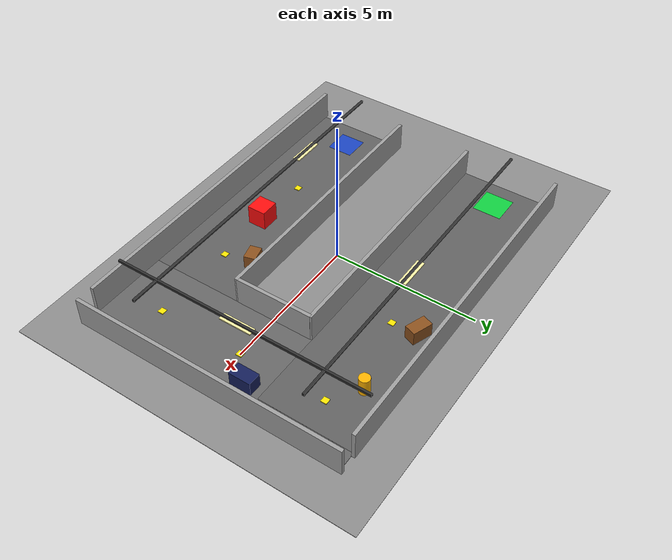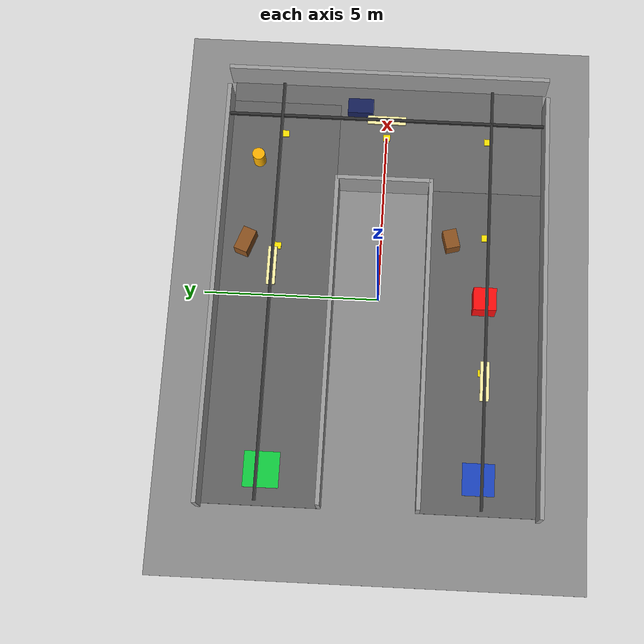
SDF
<?xml version="1.0"?>
<sdf version="1.8">
  <world name="shipyard_corridor_u">

    <!-- Core Gazebo systems -->
    <physics name="1ms" type="ignored">
      <max_step_size>0.001</max_step_size>
      <real_time_factor>1.0</real_time_factor>
    </physics>

    <plugin filename="ignition-gazebo-physics-system" name="ignition::gazebo::systems::Physics"/>
    <plugin filename="ignition-gazebo-user-commands-system" name="ignition::gazebo::systems::UserCommands"/>
    <plugin filename="ignition-gazebo-scene-broadcaster-system" name="ignition::gazebo::systems::SceneBroadcaster"/>

    <!-- Needed for GPU LiDAR / LaserScan sensors -->
    <plugin filename="libignition-gazebo-sensors-system.so" name="ignition::gazebo::systems::Sensors">
      <render_engine>ogre2</render_engine>
    </plugin>

    <!-- Needed for IMU sensors -->
    <plugin filename="libignition-gazebo-imu-system.so" name="ignition::gazebo::systems::Imu"/>

    <light type="directional" name="sun">
      <cast_shadows>true</cast_shadows>
      <pose>0 0 12 0 0 0</pose>
      <diffuse>0.85 0.85 0.85 1</diffuse>
      <specular>0.25 0.25 0.25 1</specular>
      <direction>-0.4 0.2 -0.9</direction>
    </light>

    <!-- Large indoor facility floor under the U-shaped corridor -->
    <model name="facility_floor">
      <static>true</static>
      <pose>0 0 -0.01 0 0 0</pose>
      <link name="link">
        <collision name="collision">
          <geometry><box><size>16.0 12.0 0.02</size></box></geometry>
        </collision>
        <visual name="visual">
          <geometry><box><size>16.0 12.0 0.02</size></box></geometry>
          <material>
            <ambient>0.55 0.55 0.55 1</ambient>
            <diffuse>0.55 0.55 0.55 1</diffuse>
          </material>
        </visual>
      </link>
    </model>

    <!-- U-shaped corridor floor strips: bottom leg, turn/vertical leg, top leg -->
    <model name="bottom_corridor_floor">
      <static>true</static>
      <pose>0 -3.0 0.005 0 0 0</pose>
      <link name="link">
        <collision name="collision"><geometry><box><size>12.0 3.2 0.03</size></box></geometry></collision>
        <visual name="visual"><geometry><box><size>12.0 3.2 0.03</size></box></geometry>
          <material><ambient>0.38 0.38 0.38 1</ambient><diffuse>0.38 0.38 0.38 1</diffuse></material>
        </visual>
      </link>
    </model>

    <model name="right_turn_corridor_floor">
      <static>true</static>
      <pose>5.0 0.0 0.006 0 0 0</pose>
      <link name="link">
        <collision name="collision"><geometry><box><size>3.2 9.2 0.03</size></box></geometry></collision>
        <visual name="visual"><geometry><box><size>3.2 9.2 0.03</size></box></geometry>
          <material><ambient>0.40 0.40 0.40 1</ambient><diffuse>0.40 0.40 0.40 1</diffuse></material>
        </visual>
      </link>
    </model>

    <model name="top_corridor_floor">
      <static>true</static>
      <pose>0 3.0 0.007 0 0 0</pose>
      <link name="link">
        <collision name="collision"><geometry><box><size>12.0 3.2 0.03</size></box></geometry></collision>
        <visual name="visual"><geometry><box><size>12.0 3.2 0.03</size></box></geometry>
          <material><ambient>0.38 0.38 0.38 1</ambient><diffuse>0.38 0.38 0.38 1</diffuse></material>
        </visual>
      </link>
    </model>

    <!-- Corridor walls. Width is about 3.2 m so LiDAR avoidance has room to work. -->
    <model name="bottom_outer_wall">
      <static>true</static><pose>0 -4.65 0.5 0 0 0</pose>
      <link name="link"><collision name="collision"><geometry><box><size>12.2 0.12 1.0</size></box></geometry></collision>
      <visual name="visual"><geometry><box><size>12.2 0.12 1.0</size></box></geometry><material><ambient>0.62 0.62 0.62 1</ambient><diffuse>0.62 0.62 0.62 1</diffuse></material></visual></link>
    </model>

    <model name="bottom_inner_wall">
      <static>true</static><pose>-1.3 -1.35 0.5 0 0 0</pose>
      <link name="link"><collision name="collision"><geometry><box><size>9.4 0.12 1.0</size></box></geometry></collision>
      <visual name="visual"><geometry><box><size>9.4 0.12 1.0</size></box></geometry><material><ambient>0.62 0.62 0.62 1</ambient><diffuse>0.62 0.62 0.62 1</diffuse></material></visual></link>
    </model>

    <model name="right_outer_wall">
      <static>true</static><pose>6.65 0 0.5 0 0 0</pose>
      <link name="link"><collision name="collision"><geometry><box><size>0.12 9.4 1.0</size></box></geometry></collision>
      <visual name="visual"><geometry><box><size>0.12 9.4 1.0</size></box></geometry><material><ambient>0.62 0.62 0.62 1</ambient><diffuse>0.62 0.62 0.62 1</diffuse></material></visual></link>
    </model>

    <model name="right_inner_wall">
      <static>true</static><pose>3.35 0 0.5 0 0 0</pose>
      <link name="link"><collision name="collision"><geometry><box><size>0.12 2.7 1.0</size></box></geometry></collision>
      <visual name="visual"><geometry><box><size>0.12 2.7 1.0</size></box></geometry><material><ambient>0.62 0.62 0.62 1</ambient><diffuse>0.62 0.62 0.62 1</diffuse></material></visual></link>
    </model>

    <model name="top_inner_wall">
      <static>true</static><pose>-1.3 1.35 0.5 0 0 0</pose>
      <link name="link"><collision name="collision"><geometry><box><size>9.4 0.12 1.0</size></box></geometry></collision>
      <visual name="visual"><geometry><box><size>9.4 0.12 1.0</size></box></geometry><material><ambient>0.62 0.62 0.62 1</ambient><diffuse>0.62 0.62 0.62 1</diffuse></material></visual></link>
    </model>

    <model name="top_outer_wall">
      <static>true</static><pose>0 4.65 0.5 0 0 0</pose>
      <link name="link"><collision name="collision"><geometry><box><size>12.2 0.12 1.0</size></box></geometry></collision>
      <visual name="visual"><geometry><box><size>12.2 0.12 1.0</size></box></geometry><material><ambient>0.62 0.62 0.62 1</ambient><diffuse>0.62 0.62 0.62 1</diffuse></material></visual></link>
    </model>

    <!-- Indoor overhead beams and light panels, visual only -->
    <model name="overhead_beam_bottom"><static>true</static><pose>0 -3.0 1.35 0 0 0</pose><link name="link"><visual name="visual"><geometry><box><size>12.0 0.08 0.08</size></box></geometry><material><ambient>0.18 0.18 0.18 1</ambient><diffuse>0.18 0.18 0.18 1</diffuse></material></visual></link></model>
    <model name="overhead_beam_vertical"><static>true</static><pose>5.0 0.0 1.35 0 0 1.5708</pose><link name="link"><visual name="visual"><geometry><box><size>9.0 0.08 0.08</size></box></geometry><material><ambient>0.18 0.18 0.18 1</ambient><diffuse>0.18 0.18 0.18 1</diffuse></material></visual></link></model>
    <model name="overhead_beam_top"><static>true</static><pose>0 3.0 1.35 0 0 0</pose><link name="link"><visual name="visual"><geometry><box><size>12.0 0.08 0.08</size></box></geometry><material><ambient>0.18 0.18 0.18 1</ambient><diffuse>0.18 0.18 0.18 1</diffuse></material></visual></link></model>

    <model name="light_panel_1"><static>true</static><pose>-2.5 -3.0 1.32 0 0 0</pose><link name="link"><visual name="visual"><geometry><box><size>1.1 0.25 0.04</size></box></geometry><material><ambient>1.0 0.95 0.65 1</ambient><diffuse>1.0 0.95 0.65 1</diffuse></material></visual></link></model>
    <model name="light_panel_2"><static>true</static><pose>5.0 0.0 1.32 0 0 1.5708</pose><link name="link"><visual name="visual"><geometry><box><size>1.1 0.25 0.04</size></box></geometry><material><ambient>1.0 0.95 0.65 1</ambient><diffuse>1.0 0.95 0.65 1</diffuse></material></visual></link></model>
    <model name="light_panel_3"><static>true</static><pose>0.5 3.0 1.32 0 0 0</pose><link name="link"><visual name="visual"><geometry><box><size>1.1 0.25 0.04</size></box></geometry><material><ambient>1.0 0.95 0.65 1</ambient><diffuse>1.0 0.95 0.65 1</diffuse></material></visual></link></model>

    <!-- Start and endpoint markers -->
    <model name="start_zone_marker">
      <static>true</static><pose>-5.0 -3.0 0.025 0 0 0</pose>
      <link name="link"><visual name="visual"><geometry><box><size>0.9 0.9 0.02</size></box></geometry><material><ambient>0.0 0.25 1.0 0.65</ambient><diffuse>0.0 0.25 1.0 0.65</diffuse></material></visual></link>
    </model>

    <model name="inspection_endpoint_marker">
      <static>true</static><pose>-5.0 3.0 0.025 0 0 0</pose>
      <link name="link"><visual name="visual"><geometry><box><size>1.0 1.0 0.02</size></box></geometry><material><ambient>0.0 1.0 0.25 0.75</ambient><diffuse>0.0 1.0 0.25 0.75</diffuse></material></visual></link>
    </model>

    <!-- Small yellow waypoint markers along the predefined route -->
    <model name="wp_1"><static>true</static><pose>-2.0 -3.0 0.035 0 0 0</pose><link name="link"><visual name="visual"><geometry><box><size>0.20 0.20 0.03</size></box></geometry><material><ambient>1 0.9 0 1</ambient><diffuse>1 0.9 0 1</diffuse></material></visual></link></model>
    <model name="wp_2"><static>true</static><pose>2.0 -3.0 0.035 0 0 0</pose><link name="link"><visual name="visual"><geometry><box><size>0.20 0.20 0.03</size></box></geometry><material><ambient>1 0.9 0 1</ambient><diffuse>1 0.9 0 1</diffuse></material></visual></link></model>
    <model name="wp_3_turn"><static>true</static><pose>5.0 -3.0 0.035 0 0 0</pose><link name="link"><visual name="visual"><geometry><box><size>0.20 0.20 0.03</size></box></geometry><material><ambient>1 0.9 0 1</ambient><diffuse>1 0.9 0 1</diffuse></material></visual></link></model>
    <model name="wp_4"><static>true</static><pose>5.0 0.0 0.035 0 0 0</pose><link name="link"><visual name="visual"><geometry><box><size>0.20 0.20 0.03</size></box></geometry><material><ambient>1 0.9 0 1</ambient><diffuse>1 0.9 0 1</diffuse></material></visual></link></model>
    <model name="wp_5_turn"><static>true</static><pose>5.0 3.0 0.035 0 0 0</pose><link name="link"><visual name="visual"><geometry><box><size>0.20 0.20 0.03</size></box></geometry><material><ambient>1 0.9 0 1</ambient><diffuse>1 0.9 0 1</diffuse></material></visual></link></model>
    <model name="wp_6"><static>true</static><pose>1.5 3.0 0.035 0 0 0</pose><link name="link"><visual name="visual"><geometry><box><size>0.20 0.20 0.03</size></box></geometry><material><ambient>1 0.9 0 1</ambient><diffuse>1 0.9 0 1</diffuse></material></visual></link></model>

    <!-- Avoidable obstacles / shipyard maintenance clutter -->
    <model name="avoidable_obstruction_red_block">
      <static>true</static><pose>0.0 -3.0 0.35 0 0 0</pose>
      <link name="link"><collision name="collision"><geometry><box><size>0.65 0.65 0.70</size></box></geometry></collision>
      <visual name="visual"><geometry><box><size>0.65 0.65 0.70</size></box></geometry><material><ambient>1 0.05 0.05 1</ambient><diffuse>1 0.05 0.05 1</diffuse></material></visual></link>
    </model>

    <model name="left_side_crate_bottom">
      <static>true</static><pose>1.8 -2.0 0.25 0 0 0.25</pose>
      <link name="link"><collision name="collision"><geometry><box><size>0.55 0.40 0.50</size></box></geometry></collision>
      <visual name="visual"><geometry><box><size>0.55 0.40 0.50</size></box></geometry><material><ambient>0.55 0.32 0.12 1</ambient><diffuse>0.55 0.32 0.12 1</diffuse></material></visual></link>
    </model>

    <model name="maintenance_cart_vertical">
      <static>true</static><pose>5.8 0.8 0.25 0 0 1.5708</pose>
      <link name="link"><collision name="collision"><geometry><box><size>0.75 0.45 0.50</size></box></geometry></collision>
      <visual name="visual"><geometry><box><size>0.75 0.45 0.50</size></box></geometry><material><ambient>0.08 0.12 0.35 1</ambient><diffuse>0.08 0.12 0.35 1</diffuse></material></visual></link>
    </model>

    <model name="right_side_crate_top">
      <static>true</static><pose>1.5 3.9 0.25 0 0 -0.35</pose>
      <link name="link"><collision name="collision"><geometry><box><size>0.70 0.40 0.50</size></box></geometry></collision>
      <visual name="visual"><geometry><box><size>0.70 0.40 0.50</size></box></geometry><material><ambient>0.55 0.32 0.12 1</ambient><diffuse>0.55 0.32 0.12 1</diffuse></material></visual></link>
    </model>

    <model name="maintenance_cone_top">
      <static>true</static><pose>4.1 3.7 0.30 0 0 0</pose>
      <link name="link"><collision name="collision"><geometry><cylinder><radius>0.18</radius><length>0.60</length></cylinder></geometry></collision>
      <visual name="visual"><geometry><cylinder><radius>0.18</radius><length>0.60</length></cylinder></geometry><material><ambient>1.0 0.70 0.0 1</ambient><diffuse>1.0 0.70 0.0 1</diffuse></material></visual></link>
    </model>

  </world>
</sdf>
